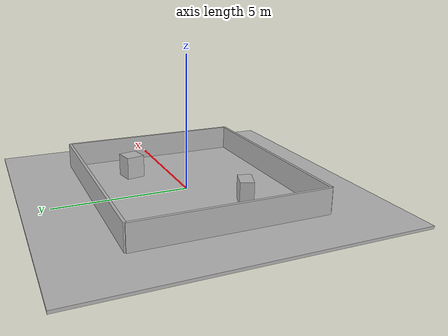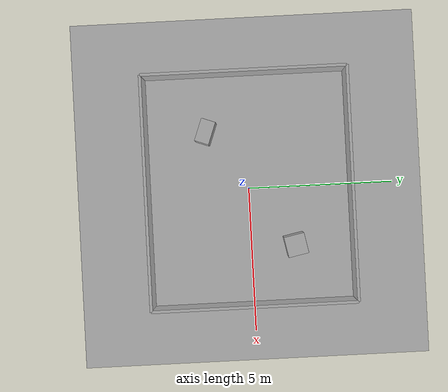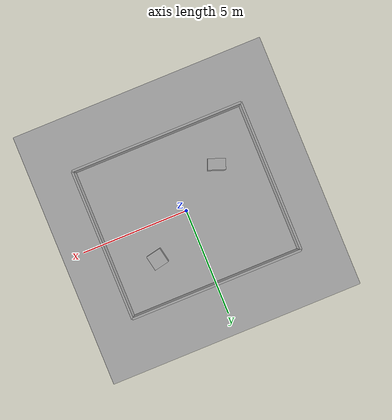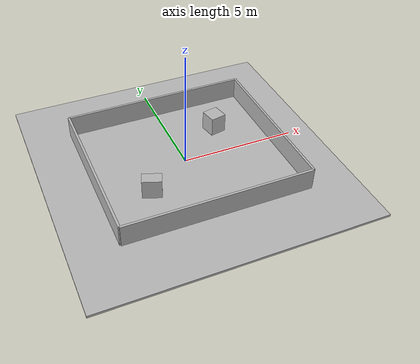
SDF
<?xml version="1.0"?>
<!-- Static, ROS-free OGRE2 GPU-LiDAR soak world: 667 beams over 180 degrees. -->
<sdf version="1.9">
  <world name="gpu_lidar_minimal_180">
    <physics name="minimal_physics" type="ignored">
      <max_step_size>0.001</max_step_size>
      <real_time_factor>1.0</real_time_factor>
    </physics>
    <plugin filename="ignition-gazebo-physics-system"
            name="ignition::gazebo::systems::Physics"/>
    <plugin filename="ignition-gazebo-user-commands-system"
            name="ignition::gazebo::systems::UserCommands"/>
    <plugin filename="ignition-gazebo-scene-broadcaster-system"
            name="ignition::gazebo::systems::SceneBroadcaster"/>
    <plugin filename="ignition-gazebo-sensors-system"
            name="ignition::gazebo::systems::Sensors">
      <render_engine>ogre2</render_engine>
    </plugin>
    <light type="directional" name="sun">
      <pose>0 0 10 0 0 0</pose>
      <diffuse>0.8 0.8 0.8 1</diffuse>
      <direction>-0.5 0.1 -0.9</direction>
    </light>

    <model name="ground">
      <static>true</static>
      <link name="link">
        <collision name="collision"><geometry><box><size>12 12 0.1</size></box></geometry></collision>
        <visual name="visual"><geometry><box><size>12 12 0.1</size></box></geometry></visual>
      </link>
    </model>
    <model name="wall_north">
      <static>true</static><pose>0 3.5 0.5 0 0 0</pose>
      <link name="link"><collision name="collision"><geometry><box><size>8 0.1 1</size></box></geometry></collision>
        <visual name="visual"><geometry><box><size>8 0.1 1</size></box></geometry></visual></link>
    </model>
    <model name="wall_south">
      <static>true</static><pose>0 -3.5 0.5 0 0 0</pose>
      <link name="link"><collision name="collision"><geometry><box><size>8 0.1 1</size></box></geometry></collision>
        <visual name="visual"><geometry><box><size>8 0.1 1</size></box></geometry></visual></link>
    </model>
    <model name="wall_east">
      <static>true</static><pose>4 0 0.5 0 0 0</pose>
      <link name="link"><collision name="collision"><geometry><box><size>0.1 7 1</size></box></geometry></collision>
        <visual name="visual"><geometry><box><size>0.1 7 1</size></box></geometry></visual></link>
    </model>
    <model name="wall_west">
      <static>true</static><pose>-4 0 0.5 0 0 0</pose>
      <link name="link"><collision name="collision"><geometry><box><size>0.1 7 1</size></box></geometry></collision>
        <visual name="visual"><geometry><box><size>0.1 7 1</size></box></geometry></visual></link>
    </model>
    <model name="box_east">
      <static>true</static><pose>2.0 1.5 0.45 0 0 0.2</pose>
      <link name="link"><collision name="collision"><geometry><box><size>0.7 0.7 0.9</size></box></geometry></collision>
        <visual name="visual"><geometry><box><size>0.7 0.7 0.9</size></box></geometry></visual></link>
    </model>
    <model name="box_west">
      <static>true</static><pose>-2.0 -1.4 0.45 0 0 -0.35</pose>
      <link name="link"><collision name="collision"><geometry><box><size>0.8 0.5 0.9</size></box></geometry></collision>
        <visual name="visual"><geometry><box><size>0.8 0.5 0.9</size></box></geometry></visual></link>
    </model>
    <model name="gpu_lidar_probe">
      <static>true</static><pose>0 0 1 0 0 0</pose>
      <link name="link">
        <sensor name="minimal_gpu_lidar" type="gpu_lidar">
          <topic>/minimal_scan</topic>
          <update_rate>12</update_rate>
          <always_on>true</always_on>
          <visualize>false</visualize>
          <ray>
            <scan>
              <horizontal>
                <samples>667</samples><resolution>1</resolution>
                <min_angle>-1.570796326795</min_angle>
                <max_angle>1.570796326795</max_angle>
              </horizontal>
              <vertical><samples>1</samples><resolution>1</resolution><min_angle>0</min_angle><max_angle>0</max_angle></vertical>
            </scan>
            <range><min>0.05</min><max>12.0</max><resolution>0.01</resolution></range>
          </ray>
          <gz_frame_id>gpu_lidar_probe</gz_frame_id>
        </sensor>
      </link>
    </model>
  </world>
</sdf>
